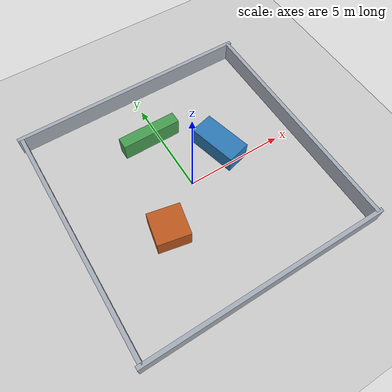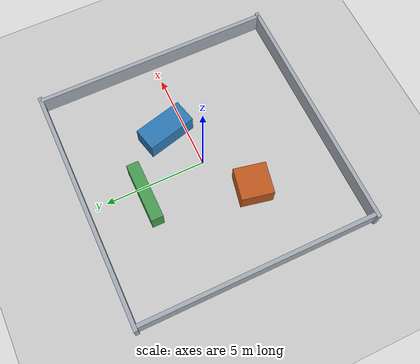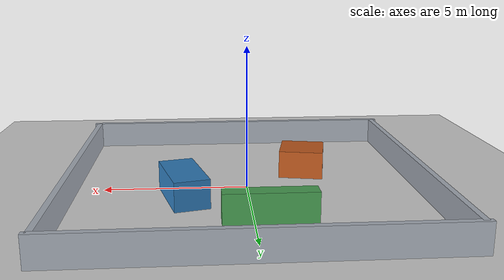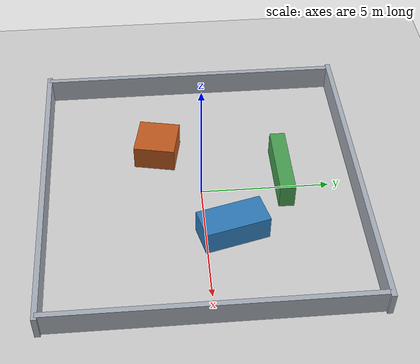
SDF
<?xml version="1.0"?>
<sdf version="1.6">
  <world name="navigation_arena">
    <physics type="ode">
      <max_step_size>0.001</max_step_size>
      <real_time_update_rate>1000</real_time_update_rate>
    </physics>

    <include>
      <uri>model://ground_plane</uri>
    </include>
    <include>
      <uri>model://sun</uri>
    </include>

    <model name="arena_obstacles">
      <static>true</static>
      <link name="obstacles">
        <collision name="north_wall_collision">
          <pose>0 6 0.5 0 0 0</pose>
          <geometry><box><size>12.4 0.2 1.0</size></box></geometry>
        </collision>
        <visual name="north_wall_visual">
          <pose>0 6 0.5 0 0 0</pose>
          <geometry><box><size>12.4 0.2 1.0</size></box></geometry>
          <material><ambient>0.65 0.68 0.72 1</ambient><diffuse>0.65 0.68 0.72 1</diffuse></material>
        </visual>

        <collision name="south_wall_collision">
          <pose>0 -6 0.5 0 0 0</pose>
          <geometry><box><size>12.4 0.2 1.0</size></box></geometry>
        </collision>
        <visual name="south_wall_visual">
          <pose>0 -6 0.5 0 0 0</pose>
          <geometry><box><size>12.4 0.2 1.0</size></box></geometry>
          <material><ambient>0.65 0.68 0.72 1</ambient><diffuse>0.65 0.68 0.72 1</diffuse></material>
        </visual>

        <collision name="east_wall_collision">
          <pose>6 0 0.5 0 0 0</pose>
          <geometry><box><size>0.2 12.0 1.0</size></box></geometry>
        </collision>
        <visual name="east_wall_visual">
          <pose>6 0 0.5 0 0 0</pose>
          <geometry><box><size>0.2 12.0 1.0</size></box></geometry>
          <material><ambient>0.65 0.68 0.72 1</ambient><diffuse>0.65 0.68 0.72 1</diffuse></material>
        </visual>

        <collision name="west_wall_collision">
          <pose>-6 0 0.5 0 0 0</pose>
          <geometry><box><size>0.2 12.0 1.0</size></box></geometry>
        </collision>
        <visual name="west_wall_visual">
          <pose>-6 0 0.5 0 0 0</pose>
          <geometry><box><size>0.2 12.0 1.0</size></box></geometry>
          <material><ambient>0.65 0.68 0.72 1</ambient><diffuse>0.65 0.68 0.72 1</diffuse></material>
        </visual>

        <collision name="east_block_collision">
          <pose>2.2 1.0 0.5 0 0 0.25</pose>
          <geometry><box><size>1.2 2.5 1.0</size></box></geometry>
        </collision>
        <visual name="east_block_visual">
          <pose>2.2 1.0 0.5 0 0 0.25</pose>
          <geometry><box><size>1.2 2.5 1.0</size></box></geometry>
          <material><ambient>0.18 0.48 0.72 1</ambient><diffuse>0.18 0.48 0.72 1</diffuse></material>
        </visual>

        <collision name="west_block_collision">
          <pose>-2.2 -1.6 0.5 0 0 -0.2</pose>
          <geometry><box><size>1.6 1.6 1.0</size></box></geometry>
        </collision>
        <visual name="west_block_visual">
          <pose>-2.2 -1.6 0.5 0 0 -0.2</pose>
          <geometry><box><size>1.6 1.6 1.0</size></box></geometry>
          <material><ambient>0.75 0.35 0.12 1</ambient><diffuse>0.75 0.35 0.12 1</diffuse></material>
        </visual>

        <collision name="north_block_collision">
          <pose>-0.5 3.2 0.5 0 0 0</pose>
          <geometry><box><size>3.0 0.6 1.0</size></box></geometry>
        </collision>
        <visual name="north_block_visual">
          <pose>-0.5 3.2 0.5 0 0 0</pose>
          <geometry><box><size>3.0 0.6 1.0</size></box></geometry>
          <material><ambient>0.28 0.62 0.32 1</ambient><diffuse>0.28 0.62 0.32 1</diffuse></material>
        </visual>
      </link>
    </model>
  </world>
</sdf>
